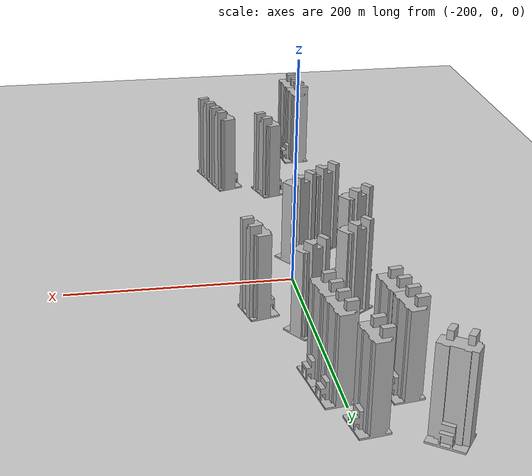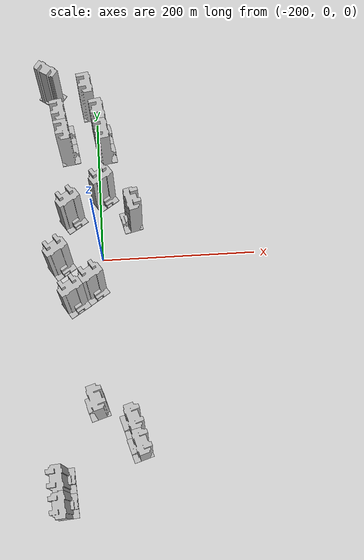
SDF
<sdf version="1.7">
 <world name="default">
  <model name="ground_plane">
   <static>1</static>
   <link name="link">
    <collision name="collision">
     <geometry><plane><normal>0 0 1</normal><size>1200 675</size></plane></geometry>
     <surface><friction><ode><mu>100</mu><mu2>50</mu2></ode></friction></surface>
    </collision>
    <visual name="visual">
     <cast_shadows>0</cast_shadows>
     <geometry><plane><normal>0 0 1</normal><size>1200 675</size></plane></geometry>
     <material>
      <script><uri>file://media/materials/scripts/gazebo.material</uri><name>Gazebo/Grey</name></script>
     </material>
    </visual>
   </link>
  </model>
  <model name="apartment_clone_0">
   <static>1</static>
   <link name="link_0">
    <inertial>
     <mass>1</mass>
     <inertia>
      <ixx>0.166667</ixx>
      <ixy>0</ixy>
      <ixz>0</ixz>
      <iyy>0.166667</iyy>
      <iyz>0</iyz>
      <izz>0.166667</izz>
     </inertia>
    </inertial>
    <pose>0.000226 2e-06 0 0 -0 0</pose>
    <visual name="visual">
     <geometry>
      <mesh>
       <uri>/home/leejeonghun/model_editor_models/apartment/scripts/apartment.dae</uri>
       <scale>0.4 0.4 0.5</scale>
      </mesh>
     </geometry>
     <material>
      <lighting>1</lighting>
      <script>
       <uri>/home/leejeonghun/model_editor_models/apartment/scripts/building.jpg</uri>
       <name>__default__</name>
      </script>
      <shader type="pixel"/>
     </material>
    </visual>
    <collision name="collision">
     <geometry>
      <mesh>
       <uri>/home/leejeonghun/model_editor_models/apartment/scripts/apartment.dae</uri>
       <scale>0.4 0.4 0.5</scale>
      </mesh>
     </geometry>
     <surface>
      <friction>
       <ode><mu>1</mu><mu2>1</mu2><fdir1>0 0 0</fdir1><slip1>0</slip1><slip2>0</slip2></ode>
       <torsional>
        <coefficient>1</coefficient>
        <patch_radius>0</patch_radius>
        <surface_radius>0</surface_radius>
        <use_patch_radius>1</use_patch_radius>
        <ode><slip>0</slip></ode>
       </torsional>
      </friction>
      <bounce><restitution_coefficient>0</restitution_coefficient><threshold>1e+06</threshold></bounce>
      <contact>
       <collide_without_contact>0</collide_without_contact>
       <collide_without_contact_bitmask>1</collide_without_contact_bitmask>
       <collide_bitmask>1</collide_bitmask>
       <ode>
        <soft_cfm>0</soft_cfm>
        <soft_erp>0.2</soft_erp>
        <kp>1e+13</kp>
        <kd>1</kd>
        <max_vel>0.01</max_vel>
        <min_depth>0</min_depth>
       </ode>
       <bullet>
        <split_impulse>1</split_impulse>
        <split_impulse_penetration_threshold>-0.01</split_impulse_penetration_threshold>
        <soft_cfm>0</soft_cfm>
        <soft_erp>0.2</soft_erp>
        <kp>1e+13</kp>
        <kd>1</kd>
       </bullet>
      </contact>
     </surface>
    </collision>
   </link>
   <static>0</static>
   <pose>-237.455 -58.0506 2.31406 0 -0 0.561981</pose>
  </model>
  <model name="apartment_clone_2">
   <static>1</static>
   <link name="link_0">
    <inertial>
     <mass>1</mass>
     <inertia>
      <ixx>0.166667</ixx>
      <ixy>0</ixy>
      <ixz>0</ixz>
      <iyy>0.166667</iyy>
      <iyz>0</iyz>
      <izz>0.166667</izz>
     </inertia>
    </inertial>
    <pose>0.000226 2e-06 0 0 -0 0</pose>
    <visual name="visual">
     <geometry>
      <mesh>
       <uri>/home/leejeonghun/model_editor_models/apartment/scripts/apartment.dae</uri>
       <scale>0.4 0.4 0.5</scale>
      </mesh>
     </geometry>
     <material>
      <lighting>1</lighting>
      <script>
       <uri>/home/leejeonghun/model_editor_models/apartment/scripts/building.jpg</uri>
       <name>__default__</name>
      </script>
      <shader type="pixel"/>
     </material>
    </visual>
    <collision name="collision">
     <geometry>
      <mesh>
       <uri>/home/leejeonghun/model_editor_models/apartment/scripts/apartment.dae</uri>
       <scale>0.4 0.4 0.5</scale>
      </mesh>
     </geometry>
     <surface>
      <friction>
       <ode><mu>1</mu><mu2>1</mu2><fdir1>0 0 0</fdir1><slip1>0</slip1><slip2>0</slip2></ode>
       <torsional>
        <coefficient>1</coefficient>
        <patch_radius>0</patch_radius>
        <surface_radius>0</surface_radius>
        <use_patch_radius>1</use_patch_radius>
        <ode><slip>0</slip></ode>
       </torsional>
      </friction>
      <bounce><restitution_coefficient>0</restitution_coefficient><threshold>1e+06</threshold></bounce>
      <contact>
       <collide_without_contact>0</collide_without_contact>
       <collide_without_contact_bitmask>1</collide_without_contact_bitmask>
       <collide_bitmask>1</collide_bitmask>
       <ode>
        <soft_cfm>0</soft_cfm>
        <soft_erp>0.2</soft_erp>
        <kp>1e+13</kp>
        <kd>1</kd>
        <max_vel>0.01</max_vel>
        <min_depth>0</min_depth>
       </ode>
       <bullet>
        <split_impulse>1</split_impulse>
        <split_impulse_penetration_threshold>-0.01</split_impulse_penetration_threshold>
        <soft_cfm>0</soft_cfm>
        <soft_erp>0.2</soft_erp>
        <kp>1e+13</kp>
        <kd>1</kd>
       </bullet>
      </contact>
     </surface>
    </collision>
   </link>
   <static>0</static>
   <pose>-212.841 -41.619 1.45895 0 -0 0.586882</pose>
  </model>
  <model name="apartment_clone_3">
   <static>1</static>
   <link name="link_0">
    <inertial>
     <mass>1</mass>
     <inertia>
      <ixx>0.166667</ixx>
      <ixy>0</ixy>
      <ixz>0</ixz>
      <iyy>0.166667</iyy>
      <iyz>0</iyz>
      <izz>0.166667</izz>
     </inertia>
    </inertial>
    <pose>0.000226 2e-06 0 0 -0 0</pose>
    <visual name="visual">
     <geometry>
      <mesh>
       <uri>/home/leejeonghun/model_editor_models/apartment/scripts/apartment.dae</uri>
       <scale>0.4 0.4 0.5</scale>
      </mesh>
     </geometry>
     <material>
      <lighting>1</lighting>
      <script>
       <uri>/home/leejeonghun/model_editor_models/apartment/scripts/building.jpg</uri>
       <name>__default__</name>
      </script>
      <shader type="pixel"/>
     </material>
    </visual>
    <collision name="collision">
     <geometry>
      <mesh>
       <uri>/home/leejeonghun/model_editor_models/apartment/scripts/apartment.dae</uri>
       <scale>0.4 0.4 0.5</scale>
      </mesh>
     </geometry>
     <surface>
      <friction>
       <ode><mu>1</mu><mu2>1</mu2><fdir1>0 0 0</fdir1><slip1>0</slip1><slip2>0</slip2></ode>
       <torsional>
        <coefficient>1</coefficient>
        <patch_radius>0</patch_radius>
        <surface_radius>0</surface_radius>
        <use_patch_radius>1</use_patch_radius>
        <ode><slip>0</slip></ode>
       </torsional>
      </friction>
      <bounce><restitution_coefficient>0</restitution_coefficient><threshold>1e+06</threshold></bounce>
      <contact>
       <collide_without_contact>0</collide_without_contact>
       <collide_without_contact_bitmask>1</collide_without_contact_bitmask>
       <collide_bitmask>1</collide_bitmask>
       <ode>
        <soft_cfm>0</soft_cfm>
        <soft_erp>0.2</soft_erp>
        <kp>1e+13</kp>
        <kd>1</kd>
        <max_vel>0.01</max_vel>
        <min_depth>0</min_depth>
       </ode>
       <bullet>
        <split_impulse>1</split_impulse>
        <split_impulse_penetration_threshold>-0.01</split_impulse_penetration_threshold>
        <soft_cfm>0</soft_cfm>
        <soft_erp>0.2</soft_erp>
        <kp>1e+13</kp>
        <kd>1</kd>
       </bullet>
      </contact>
     </surface>
    </collision>
   </link>
   <static>0</static>
   <pose>-195.289 87.5395 1.45895 0 -0 0.586882</pose>
  </model>
  <model name="apartment_clone_4">
   <static>1</static>
   <link name="link_0">
    <inertial>
     <mass>1</mass>
     <inertia>
      <ixx>0.166667</ixx>
      <ixy>0</ixy>
      <ixz>0</ixz>
      <iyy>0.166667</iyy>
      <iyz>0</iyz>
      <izz>0.166667</izz>
     </inertia>
    </inertial>
    <pose>0.000226 2e-06 0 0 -0 0</pose>
    <visual name="visual">
     <geometry>
      <mesh>
       <uri>/home/leejeonghun/model_editor_models/apartment/scripts/apartment.dae</uri>
       <scale>0.4 0.4 0.5</scale>
      </mesh>
     </geometry>
     <material>
      <lighting>1</lighting>
      <script>
       <uri>/home/leejeonghun/model_editor_models/apartment/scripts/building.jpg</uri>
       <name>__default__</name>
      </script>
      <shader type="pixel"/>
     </material>
    </visual>
    <collision name="collision">
     <geometry>
      <mesh>
       <uri>/home/leejeonghun/model_editor_models/apartment/scripts/apartment.dae</uri>
       <scale>0.4 0.4 0.5</scale>
      </mesh>
     </geometry>
     <surface>
      <friction>
       <ode><mu>1</mu><mu2>1</mu2><fdir1>0 0 0</fdir1><slip1>0</slip1><slip2>0</slip2></ode>
       <torsional>
        <coefficient>1</coefficient>
        <patch_radius>0</patch_radius>
        <surface_radius>0</surface_radius>
        <use_patch_radius>1</use_patch_radius>
        <ode><slip>0</slip></ode>
       </torsional>
      </friction>
      <bounce><restitution_coefficient>0</restitution_coefficient><threshold>1e+06</threshold></bounce>
      <contact>
       <collide_without_contact>0</collide_without_contact>
       <collide_without_contact_bitmask>1</collide_without_contact_bitmask>
       <collide_bitmask>1</collide_bitmask>
       <ode>
        <soft_cfm>0</soft_cfm>
        <soft_erp>0.2</soft_erp>
        <kp>1e+13</kp>
        <kd>1</kd>
        <max_vel>0.01</max_vel>
        <min_depth>0</min_depth>
       </ode>
       <bullet>
        <split_impulse>1</split_impulse>
        <split_impulse_penetration_threshold>-0.01</split_impulse_penetration_threshold>
        <soft_cfm>0</soft_cfm>
        <soft_erp>0.2</soft_erp>
        <kp>1e+13</kp>
        <kd>1</kd>
       </bullet>
      </contact>
     </surface>
    </collision>
   </link>
   <static>0</static>
   <pose>-237.879 58.8763 1.45895 0 -0 0.586882</pose>
  </model>
  <model name="apartment_clone_7">
   <static>1</static>
   <link name="link_0">
    <inertial>
     <mass>1</mass>
     <inertia>
      <ixx>0.166667</ixx>
      <ixy>0</ixy>
      <ixz>0</ixz>
      <iyy>0.166667</iyy>
      <iyz>0</iyz>
      <izz>0.166667</izz>
     </inertia>
    </inertial>
    <pose>0.000226 2e-06 0 0 -0 0</pose>
    <visual name="visual">
     <geometry>
      <mesh>
       <uri>/home/leejeonghun/model_editor_models/apartment/scripts/apartment.dae</uri>
       <scale>0.4 0.4 0.5</scale>
      </mesh>
     </geometry>
     <material>
      <lighting>1</lighting>
      <script>
       <uri>/home/leejeonghun/model_editor_models/apartment/scripts/building.jpg</uri>
       <name>__default__</name>
      </script>
      <shader type="pixel"/>
     </material>
    </visual>
    <collision name="collision">
     <geometry>
      <mesh>
       <uri>/home/leejeonghun/model_editor_models/apartment/scripts/apartment.dae</uri>
       <scale>0.4 0.4 0.5</scale>
      </mesh>
     </geometry>
     <surface>
      <friction>
       <ode><mu>1</mu><mu2>1</mu2><fdir1>0 0 0</fdir1><slip1>0</slip1><slip2>0</slip2></ode>
       <torsional>
        <coefficient>1</coefficient>
        <patch_radius>0</patch_radius>
        <surface_radius>0</surface_radius>
        <use_patch_radius>1</use_patch_radius>
        <ode><slip>0</slip></ode>
       </torsional>
      </friction>
      <bounce><restitution_coefficient>0</restitution_coefficient><threshold>1e+06</threshold></bounce>
      <contact>
       <collide_without_contact>0</collide_without_contact>
       <collide_without_contact_bitmask>1</collide_without_contact_bitmask>
       <collide_bitmask>1</collide_bitmask>
       <ode>
        <soft_cfm>0</soft_cfm>
        <soft_erp>0.2</soft_erp>
        <kp>1e+13</kp>
        <kd>1</kd>
        <max_vel>0.01</max_vel>
        <min_depth>0</min_depth>
       </ode>
       <bullet>
        <split_impulse>1</split_impulse>
        <split_impulse_penetration_threshold>-0.01</split_impulse_penetration_threshold>
        <soft_cfm>0</soft_cfm>
        <soft_erp>0.2</soft_erp>
        <kp>1e+13</kp>
        <kd>1</kd>
       </bullet>
      </contact>
     </surface>
    </collision>
   </link>
   <static>0</static>
   <pose>-254.849 -5.7921 1.45895 0 -0 0.586882</pose>
  </model>
  <model name="apartment_clone_8_clone_3_clone">
   <static>1</static>
   <link name="link_0">
    <inertial>
     <mass>1</mass>
     <inertia>
      <ixx>0.166667</ixx>
      <ixy>0</ixy>
      <ixz>0</ixz>
      <iyy>0.166667</iyy>
      <iyz>0</iyz>
      <izz>0.166667</izz>
     </inertia>
    </inertial>
    <pose>0.000226 2e-06 0 0 -0 0</pose>
    <visual name="visual">
     <geometry>
      <mesh>
       <uri>/home/leejeonghun/model_editor_models/apartment/scripts/apartment.dae</uri>
       <scale>0.4 0.4 0.5</scale>
      </mesh>
     </geometry>
     <material>
      <lighting>1</lighting>
      <script>
       <uri>/home/leejeonghun/model_editor_models/apartment/scripts/building.jpg</uri>
       <name>__default__</name>
      </script>
      <shader type="pixel"/>
     </material>
    </visual>
    <collision name="collision">
     <geometry>
      <mesh>
       <uri>/home/leejeonghun/model_editor_models/apartment/scripts/apartment.dae</uri>
       <scale>0.4 0.4 0.5</scale>
      </mesh>
     </geometry>
     <surface>
      <friction>
       <ode><mu>1</mu><mu2>1</mu2><fdir1>0 0 0</fdir1><slip1>0</slip1><slip2>0</slip2></ode>
       <torsional>
        <coefficient>1</coefficient>
        <patch_radius>0</patch_radius>
        <surface_radius>0</surface_radius>
        <use_patch_radius>1</use_patch_radius>
        <ode><slip>0</slip></ode>
       </torsional>
      </friction>
      <bounce><restitution_coefficient>0</restitution_coefficient><threshold>1e+06</threshold></bounce>
      <contact>
       <collide_without_contact>0</collide_without_contact>
       <collide_without_contact_bitmask>1</collide_without_contact_bitmask>
       <collide_bitmask>1</collide_bitmask>
       <ode>
        <soft_cfm>0</soft_cfm>
        <soft_erp>0.2</soft_erp>
        <kp>1e+13</kp>
        <kd>1</kd>
        <max_vel>0.01</max_vel>
        <min_depth>0</min_depth>
       </ode>
       <bullet>
        <split_impulse>1</split_impulse>
        <split_impulse_penetration_threshold>-0.01</split_impulse_penetration_threshold>
        <soft_cfm>0</soft_cfm>
        <soft_erp>0.2</soft_erp>
        <kp>1e+13</kp>
        <kd>1</kd>
       </bullet>
      </contact>
     </surface>
    </collision>
   </link>
   <static>0</static>
   <pose>-261.931 246.709 1.45895 0 -0 2.51739</pose>
  </model>
  <model name="apartment_clone_8_clone_3_clone_0">
   <static>1</static>
   <link name="link_0">
    <inertial>
     <mass>1</mass>
     <inertia>
      <ixx>0.166667</ixx>
      <ixy>0</ixy>
      <ixz>0</ixz>
      <iyy>0.166667</iyy>
      <iyz>0</iyz>
      <izz>0.166667</izz>
     </inertia>
    </inertial>
    <pose>0.000226 2e-06 0 0 -0 0</pose>
    <visual name="visual">
     <geometry>
      <mesh>
       <uri>/home/leejeonghun/model_editor_models/apartment/scripts/apartment.dae</uri>
       <scale>0.4 0.4 0.5</scale>
      </mesh>
     </geometry>
     <material>
      <lighting>1</lighting>
      <script>
       <uri>/home/leejeonghun/model_editor_models/apartment/scripts/building.jpg</uri>
       <name>__default__</name>
      </script>
      <shader type="pixel"/>
     </material>
    </visual>
    <collision name="collision">
     <geometry>
      <mesh>
       <uri>/home/leejeonghun/model_editor_models/apartment/scripts/apartment.dae</uri>
       <scale>0.4 0.4 0.5</scale>
      </mesh>
     </geometry>
     <surface>
      <friction>
       <ode><mu>1</mu><mu2>1</mu2><fdir1>0 0 0</fdir1><slip1>0</slip1><slip2>0</slip2></ode>
       <torsional>
        <coefficient>1</coefficient>
        <patch_radius>0</patch_radius>
        <surface_radius>0</surface_radius>
        <use_patch_radius>1</use_patch_radius>
        <ode><slip>0</slip></ode>
       </torsional>
      </friction>
      <bounce><restitution_coefficient>0</restitution_coefficient><threshold>1e+06</threshold></bounce>
      <contact>
       <collide_without_contact>0</collide_without_contact>
       <collide_without_contact_bitmask>1</collide_without_contact_bitmask>
       <collide_bitmask>1</collide_bitmask>
       <ode>
        <soft_cfm>0</soft_cfm>
        <soft_erp>0.2</soft_erp>
        <kp>1e+13</kp>
        <kd>1</kd>
        <max_vel>0.01</max_vel>
        <min_depth>0</min_depth>
       </ode>
       <bullet>
        <split_impulse>1</split_impulse>
        <split_impulse_penetration_threshold>-0.01</split_impulse_penetration_threshold>
        <soft_cfm>0</soft_cfm>
        <soft_erp>0.2</soft_erp>
        <kp>1e+13</kp>
        <kd>1</kd>
       </bullet>
      </contact>
     </surface>
    </collision>
   </link>
   <static>0</static>
   <pose>-245.732 185.285 1.45895 0 -0 1.72652</pose>
  </model>
  <model name="apartment_clone_8_clone_3_clone_0_clone">
   <static>1</static>
   <link name="link_0">
    <inertial>
     <mass>1</mass>
     <inertia>
      <ixx>0.166667</ixx>
      <ixy>0</ixy>
      <ixz>0</ixz>
      <iyy>0.166667</iyy>
      <iyz>0</iyz>
      <izz>0.166667</izz>
     </inertia>
    </inertial>
    <pose>0.000226 2e-06 0 0 -0 0</pose>
    <visual name="visual">
     <geometry>
      <mesh>
       <uri>/home/leejeonghun/model_editor_models/apartment/scripts/apartment.dae</uri>
       <scale>0.4 0.4 0.5</scale>
      </mesh>
     </geometry>
     <material>
      <lighting>1</lighting>
      <script>
       <uri>/home/leejeonghun/model_editor_models/apartment/scripts/building.jpg</uri>
       <name>__default__</name>
      </script>
      <shader type="pixel"/>
     </material>
    </visual>
    <collision name="collision">
     <geometry>
      <mesh>
       <uri>/home/leejeonghun/model_editor_models/apartment/scripts/apartment.dae</uri>
       <scale>0.4 0.4 0.5</scale>
      </mesh>
     </geometry>
     <surface>
      <friction>
       <ode><mu>1</mu><mu2>1</mu2><fdir1>0 0 0</fdir1><slip1>0</slip1><slip2>0</slip2></ode>
       <torsional>
        <coefficient>1</coefficient>
        <patch_radius>0</patch_radius>
        <surface_radius>0</surface_radius>
        <use_patch_radius>1</use_patch_radius>
        <ode><slip>0</slip></ode>
       </torsional>
      </friction>
      <bounce><restitution_coefficient>0</restitution_coefficient><threshold>1e+06</threshold></bounce>
      <contact>
       <collide_without_contact>0</collide_without_contact>
       <collide_without_contact_bitmask>1</collide_without_contact_bitmask>
       <collide_bitmask>1</collide_bitmask>
       <ode>
        <soft_cfm>0</soft_cfm>
        <soft_erp>0.2</soft_erp>
        <kp>1e+13</kp>
        <kd>1</kd>
        <max_vel>0.01</max_vel>
        <min_depth>0</min_depth>
       </ode>
       <bullet>
        <split_impulse>1</split_impulse>
        <split_impulse_penetration_threshold>-0.01</split_impulse_penetration_threshold>
        <soft_cfm>0</soft_cfm>
        <soft_erp>0.2</soft_erp>
        <kp>1e+13</kp>
        <kd>1</kd>
       </bullet>
      </contact>
     </surface>
    </collision>
   </link>
   <static>0</static>
   <pose>-240.976 156.074 1.45895 0 -0 1.72652</pose>
  </model>
  <model name="apartment_clone_8_clone_3_clone_0_clone_0">
   <static>1</static>
   <link name="link_0">
    <inertial>
     <mass>1</mass>
     <inertia>
      <ixx>0.166667</ixx>
      <ixy>0</ixy>
      <ixz>0</ixz>
      <iyy>0.166667</iyy>
      <iyz>0</iyz>
      <izz>0.166667</izz>
     </inertia>
    </inertial>
    <pose>0.000226 2e-06 0 0 -0 0</pose>
    <visual name="visual">
     <geometry>
      <mesh>
       <uri>/home/leejeonghun/model_editor_models/apartment/scripts/apartment.dae</uri>
       <scale>0.4 0.4 0.5</scale>
      </mesh>
     </geometry>
     <material>
      <lighting>1</lighting>
      <script>
       <uri>/home/leejeonghun/model_editor_models/apartment/scripts/building.jpg</uri>
       <name>__default__</name>
      </script>
      <shader type="pixel"/>
     </material>
    </visual>
    <collision name="collision">
     <geometry>
      <mesh>
       <uri>/home/leejeonghun/model_editor_models/apartment/scripts/apartment.dae</uri>
       <scale>0.4 0.4 0.5</scale>
      </mesh>
     </geometry>
     <surface>
      <friction>
       <ode><mu>1</mu><mu2>1</mu2><fdir1>0 0 0</fdir1><slip1>0</slip1><slip2>0</slip2></ode>
       <torsional>
        <coefficient>1</coefficient>
        <patch_radius>0</patch_radius>
        <surface_radius>0</surface_radius>
        <use_patch_radius>1</use_patch_radius>
        <ode><slip>0</slip></ode>
       </torsional>
      </friction>
      <bounce><restitution_coefficient>0</restitution_coefficient><threshold>1e+06</threshold></bounce>
      <contact>
       <collide_without_contact>0</collide_without_contact>
       <collide_without_contact_bitmask>1</collide_without_contact_bitmask>
       <collide_bitmask>1</collide_bitmask>
       <ode>
        <soft_cfm>0</soft_cfm>
        <soft_erp>0.2</soft_erp>
        <kp>1e+13</kp>
        <kd>1</kd>
        <max_vel>0.01</max_vel>
        <min_depth>0</min_depth>
       </ode>
       <bullet>
        <split_impulse>1</split_impulse>
        <split_impulse_penetration_threshold>-0.01</split_impulse_penetration_threshold>
        <soft_cfm>0</soft_cfm>
        <soft_erp>0.2</soft_erp>
        <kp>1e+13</kp>
        <kd>1</kd>
       </bullet>
      </contact>
     </surface>
    </collision>
   </link>
   <static>0</static>
   <pose>-190.441 154.89 1.45895 0 -0 1.72652</pose>
  </model>
  <model name="apartment_clone_8_clone_3_clone_0_clone_1">
   <static>1</static>
   <link name="link_0">
    <inertial>
     <mass>1</mass>
     <inertia>
      <ixx>0.166667</ixx>
      <ixy>0</ixy>
      <ixz>0</ixz>
      <iyy>0.166667</iyy>
      <iyz>0</iyz>
      <izz>0.166667</izz>
     </inertia>
    </inertial>
    <pose>0.000226 2e-06 0 0 -0 0</pose>
    <visual name="visual">
     <geometry>
      <mesh>
       <uri>/home/leejeonghun/model_editor_models/apartment/scripts/apartment.dae</uri>
       <scale>0.4 0.4 0.5</scale>
      </mesh>
     </geometry>
     <material>
      <lighting>1</lighting>
      <script>
       <uri>/home/leejeonghun/model_editor_models/apartment/scripts/building.jpg</uri>
       <name>__default__</name>
      </script>
      <shader type="pixel"/>
     </material>
    </visual>
    <collision name="collision">
     <geometry>
      <mesh>
       <uri>/home/leejeonghun/model_editor_models/apartment/scripts/apartment.dae</uri>
       <scale>0.4 0.4 0.5</scale>
      </mesh>
     </geometry>
     <surface>
      <friction>
       <ode><mu>1</mu><mu2>1</mu2><fdir1>0 0 0</fdir1><slip1>0</slip1><slip2>0</slip2></ode>
       <torsional>
        <coefficient>1</coefficient>
        <patch_radius>0</patch_radius>
        <surface_radius>0</surface_radius>
        <use_patch_radius>1</use_patch_radius>
        <ode><slip>0</slip></ode>
       </torsional>
      </friction>
      <bounce><restitution_coefficient>0</restitution_coefficient><threshold>1e+06</threshold></bounce>
      <contact>
       <collide_without_contact>0</collide_without_contact>
       <collide_without_contact_bitmask>1</collide_without_contact_bitmask>
       <collide_bitmask>1</collide_bitmask>
       <ode>
        <soft_cfm>0</soft_cfm>
        <soft_erp>0.2</soft_erp>
        <kp>1e+13</kp>
        <kd>1</kd>
        <max_vel>0.01</max_vel>
        <min_depth>0</min_depth>
       </ode>
       <bullet>
        <split_impulse>1</split_impulse>
        <split_impulse_penetration_threshold>-0.01</split_impulse_penetration_threshold>
        <soft_cfm>0</soft_cfm>
        <soft_erp>0.2</soft_erp>
        <kp>1e+13</kp>
        <kd>1</kd>
       </bullet>
      </contact>
     </surface>
    </collision>
   </link>
   <static>0</static>
   <pose>-194.757 183.695 1.45895 0 -0 1.72652</pose>
  </model>
  <model name="apartment_clone_8_clone_3_clone_0_clone_2">
   <static>1</static>
   <link name="link_0">
    <inertial>
     <mass>1</mass>
     <inertia>
      <ixx>0.166667</ixx>
      <ixy>0</ixy>
      <ixz>0</ixz>
      <iyy>0.166667</iyy>
      <iyz>0</iyz>
      <izz>0.166667</izz>
     </inertia>
    </inertial>
    <pose>0.000226 2e-06 0 0 -0 0</pose>
    <visual name="visual">
     <geometry>
      <mesh>
       <uri>/home/leejeonghun/model_editor_models/apartment/scripts/apartment.dae</uri>
       <scale>0.4 0.4 0.5</scale>
      </mesh>
     </geometry>
     <material>
      <lighting>1</lighting>
      <script>
       <uri>/home/leejeonghun/model_editor_models/apartment/scripts/building.jpg</uri>
       <name>__default__</name>
      </script>
      <shader type="pixel"/>
     </material>
    </visual>
    <collision name="collision">
     <geometry>
      <mesh>
       <uri>/home/leejeonghun/model_editor_models/apartment/scripts/apartment.dae</uri>
       <scale>0.4 0.4 0.5</scale>
      </mesh>
     </geometry>
     <surface>
      <friction>
       <ode><mu>1</mu><mu2>1</mu2><fdir1>0 0 0</fdir1><slip1>0</slip1><slip2>0</slip2></ode>
       <torsional>
        <coefficient>1</coefficient>
        <patch_radius>0</patch_radius>
        <surface_radius>0</surface_radius>
        <use_patch_radius>1</use_patch_radius>
        <ode><slip>0</slip></ode>
       </torsional>
      </friction>
      <bounce><restitution_coefficient>0</restitution_coefficient><threshold>1e+06</threshold></bounce>
      <contact>
       <collide_without_contact>0</collide_without_contact>
       <collide_without_contact_bitmask>1</collide_without_contact_bitmask>
       <collide_bitmask>1</collide_bitmask>
       <ode>
        <soft_cfm>0</soft_cfm>
        <soft_erp>0.2</soft_erp>
        <kp>1e+13</kp>
        <kd>1</kd>
        <max_vel>0.01</max_vel>
        <min_depth>0</min_depth>
       </ode>
       <bullet>
        <split_impulse>1</split_impulse>
        <split_impulse_penetration_threshold>-0.01</split_impulse_penetration_threshold>
        <soft_cfm>0</soft_cfm>
        <soft_erp>0.2</soft_erp>
        <kp>1e+13</kp>
        <kd>1</kd>
       </bullet>
      </contact>
     </surface>
    </collision>
   </link>
   <static>0</static>
   <pose>-209.656 223.308 1.45895 0 -0 1.72652</pose>
  </model>
  <model name="apartment_clone_1_clone">
   <static>1</static>
   <link name="link_0">
    <inertial>
     <mass>1</mass>
     <inertia>
      <ixx>0.166667</ixx>
      <ixy>0</ixy>
      <ixz>0</ixz>
      <iyy>0.166667</iyy>
      <iyz>0</iyz>
      <izz>0.166667</izz>
     </inertia>
    </inertial>
    <pose>0.000226 2e-06 0 0 -0 0</pose>
    <visual name="visual">
     <geometry>
      <mesh>
       <uri>/home/leejeonghun/model_editor_models/apartment/scripts/apartment.dae</uri>
       <scale>0.4 0.4 0.5</scale>
      </mesh>
     </geometry>
     <material>
      <lighting>1</lighting>
      <script>
       <uri>/home/leejeonghun/model_editor_models/apartment/scripts/building.jpg</uri>
       <name>__default__</name>
      </script>
      <shader type="pixel"/>
     </material>
    </visual>
    <collision name="collision">
     <geometry>
      <mesh>
       <uri>/home/leejeonghun/model_editor_models/apartment/scripts/apartment.dae</uri>
       <scale>0.4 0.4 0.5</scale>
      </mesh>
     </geometry>
     <surface>
      <friction>
       <ode><mu>1</mu><mu2>1</mu2><fdir1>0 0 0</fdir1><slip1>0</slip1><slip2>0</slip2></ode>
       <torsional>
        <coefficient>1</coefficient>
        <patch_radius>0</patch_radius>
        <surface_radius>0</surface_radius>
        <use_patch_radius>1</use_patch_radius>
        <ode><slip>0</slip></ode>
       </torsional>
      </friction>
      <bounce><restitution_coefficient>0</restitution_coefficient><threshold>1e+06</threshold></bounce>
      <contact>
       <collide_without_contact>0</collide_without_contact>
       <collide_without_contact_bitmask>1</collide_without_contact_bitmask>
       <collide_bitmask>1</collide_bitmask>
       <ode>
        <soft_cfm>0</soft_cfm>
        <soft_erp>0.2</soft_erp>
        <kp>1e+13</kp>
        <kd>1</kd>
        <max_vel>0.01</max_vel>
        <min_depth>0</min_depth>
       </ode>
       <bullet>
        <split_impulse>1</split_impulse>
        <split_impulse_penetration_threshold>-0.01</split_impulse_penetration_threshold>
        <soft_cfm>0</soft_cfm>
        <soft_erp>0.2</soft_erp>
        <kp>1e+13</kp>
        <kd>1</kd>
       </bullet>
      </contact>
     </surface>
    </collision>
   </link>
   <static>0</static>
   <pose>-158.717 52.6798 2.31406 0 0 -1.33202</pose>
  </model>
  <model name="apartment_0_clone_0_clone_1">
   <static>1</static>
   <link name="link_0">
    <inertial>
     <mass>1</mass>
     <inertia>
      <ixx>0.166667</ixx>
      <ixy>0</ixy>
      <ixz>0</ixz>
      <iyy>0.166667</iyy>
      <iyz>0</iyz>
      <izz>0.166667</izz>
     </inertia>
    </inertial>
    <pose>0.000226 2e-06 0 0 -0 0</pose>
    <visual name="visual">
     <geometry>
      <mesh>
       <uri>/home/leejeonghun/model_editor_models/apartment/scripts/apartment.dae</uri>
       <scale>0.4 0.4 0.5</scale>
      </mesh>
     </geometry>
     <material>
      <lighting>1</lighting>
      <script>
       <uri>/home/leejeonghun/model_editor_models/apartment/scripts/building.jpg</uri>
       <name>__default__</name>
      </script>
      <shader type="pixel"/>
     </material>
    </visual>
    <collision name="collision">
     <geometry>
      <mesh>
       <uri>/home/leejeonghun/model_editor_models/apartment/scripts/apartment.dae</uri>
       <scale>0.4 0.4 0.5</scale>
      </mesh>
     </geometry>
     <surface>
      <friction>
       <ode><mu>1</mu><mu2>1</mu2><fdir1>0 0 0</fdir1><slip1>0</slip1><slip2>0</slip2></ode>
       <torsional>
        <coefficient>1</coefficient>
        <patch_radius>0</patch_radius>
        <surface_radius>0</surface_radius>
        <use_patch_radius>1</use_patch_radius>
        <ode><slip>0</slip></ode>
       </torsional>
      </friction>
      <bounce><restitution_coefficient>0</restitution_coefficient><threshold>1e+06</threshold></bounce>
      <contact>
       <collide_without_contact>0</collide_without_contact>
       <collide_without_contact_bitmask>1</collide_without_contact_bitmask>
       <collide_bitmask>1</collide_bitmask>
       <ode>
        <soft_cfm>0</soft_cfm>
        <soft_erp>0.2</soft_erp>
        <kp>1e+13</kp>
        <kd>1</kd>
        <max_vel>0.01</max_vel>
        <min_depth>0</min_depth>
       </ode>
       <bullet>
        <split_impulse>1</split_impulse>
        <split_impulse_penetration_threshold>-0.01</split_impulse_penetration_threshold>
        <soft_cfm>0</soft_cfm>
        <soft_erp>0.2</soft_erp>
        <kp>1e+13</kp>
        <kd>1</kd>
       </bullet>
      </contact>
     </surface>
    </collision>
   </link>
   <static>0</static>
   <pose>-170.376 -216.404 1.76839 0 0 -1.27445</pose>
  </model>
  <model name="apartment_0_clone_0_clone_1_clone">
   <static>1</static>
   <link name="link_0">
    <inertial>
     <mass>1</mass>
     <inertia>
      <ixx>0.166667</ixx>
      <ixy>0</ixy>
      <ixz>0</ixz>
      <iyy>0.166667</iyy>
      <iyz>0</iyz>
      <izz>0.166667</izz>
     </inertia>
    </inertial>
    <pose>0.000226 2e-06 0 0 -0 0</pose>
    <visual name="visual">
     <geometry>
      <mesh>
       <uri>/home/leejeonghun/model_editor_models/apartment/scripts/apartment.dae</uri>
       <scale>0.4 0.4 0.5</scale>
      </mesh>
     </geometry>
     <material>
      <lighting>1</lighting>
      <script>
       <uri>/home/leejeonghun/model_editor_models/apartment/scripts/building.jpg</uri>
       <name>__default__</name>
      </script>
      <shader type="pixel"/>
     </material>
    </visual>
    <collision name="collision">
     <geometry>
      <mesh>
       <uri>/home/leejeonghun/model_editor_models/apartment/scripts/apartment.dae</uri>
       <scale>0.4 0.4 0.5</scale>
      </mesh>
     </geometry>
     <surface>
      <friction>
       <ode><mu>1</mu><mu2>1</mu2><fdir1>0 0 0</fdir1><slip1>0</slip1><slip2>0</slip2></ode>
       <torsional>
        <coefficient>1</coefficient>
        <patch_radius>0</patch_radius>
        <surface_radius>0</surface_radius>
        <use_patch_radius>1</use_patch_radius>
        <ode><slip>0</slip></ode>
       </torsional>
      </friction>
      <bounce><restitution_coefficient>0</restitution_coefficient><threshold>1e+06</threshold></bounce>
      <contact>
       <collide_without_contact>0</collide_without_contact>
       <collide_without_contact_bitmask>1</collide_without_contact_bitmask>
       <collide_bitmask>1</collide_bitmask>
       <ode>
        <soft_cfm>0</soft_cfm>
        <soft_erp>0.2</soft_erp>
        <kp>1e+13</kp>
        <kd>1</kd>
        <max_vel>0.01</max_vel>
        <min_depth>0</min_depth>
       </ode>
       <bullet>
        <split_impulse>1</split_impulse>
        <split_impulse_penetration_threshold>-0.01</split_impulse_penetration_threshold>
        <soft_cfm>0</soft_cfm>
        <soft_erp>0.2</soft_erp>
        <kp>1e+13</kp>
        <kd>1</kd>
       </bullet>
      </contact>
     </surface>
    </collision>
   </link>
   <static>0</static>
   <pose>-162.567 -244.997 1.76839 0 0 -1.27445</pose>
  </model>
  <model name="apartment_0_clone_0_clone_1_clone_0">
   <static>1</static>
   <link name="link_0">
    <inertial>
     <mass>1</mass>
     <inertia>
      <ixx>0.166667</ixx>
      <ixy>0</ixy>
      <ixz>0</ixz>
      <iyy>0.166667</iyy>
      <iyz>0</iyz>
      <izz>0.166667</izz>
     </inertia>
    </inertial>
    <pose>0.000226 2e-06 0 0 -0 0</pose>
    <visual name="visual">
     <geometry>
      <mesh>
       <uri>/home/leejeonghun/model_editor_models/apartment/scripts/apartment.dae</uri>
       <scale>0.4 0.4 0.5</scale>
      </mesh>
     </geometry>
     <material>
      <lighting>1</lighting>
      <script>
       <uri>/home/leejeonghun/model_editor_models/apartment/scripts/building.jpg</uri>
       <name>__default__</name>
      </script>
      <shader type="pixel"/>
     </material>
    </visual>
    <collision name="collision">
     <geometry>
      <mesh>
       <uri>/home/leejeonghun/model_editor_models/apartment/scripts/apartment.dae</uri>
       <scale>0.4 0.4 0.5</scale>
      </mesh>
     </geometry>
     <surface>
      <friction>
       <ode><mu>1</mu><mu2>1</mu2><fdir1>0 0 0</fdir1><slip1>0</slip1><slip2>0</slip2></ode>
       <torsional>
        <coefficient>1</coefficient>
        <patch_radius>0</patch_radius>
        <surface_radius>0</surface_radius>
        <use_patch_radius>1</use_patch_radius>
        <ode><slip>0</slip></ode>
       </torsional>
      </friction>
      <bounce><restitution_coefficient>0</restitution_coefficient><threshold>1e+06</threshold></bounce>
      <contact>
       <collide_without_contact>0</collide_without_contact>
       <collide_without_contact_bitmask>1</collide_without_contact_bitmask>
       <collide_bitmask>1</collide_bitmask>
       <ode>
        <soft_cfm>0</soft_cfm>
        <soft_erp>0.2</soft_erp>
        <kp>1e+13</kp>
        <kd>1</kd>
        <max_vel>0.01</max_vel>
        <min_depth>0</min_depth>
       </ode>
       <bullet>
        <split_impulse>1</split_impulse>
        <split_impulse_penetration_threshold>-0.01</split_impulse_penetration_threshold>
        <soft_cfm>0</soft_cfm>
        <soft_erp>0.2</soft_erp>
        <kp>1e+13</kp>
        <kd>1</kd>
       </bullet>
      </contact>
     </surface>
    </collision>
   </link>
   <static>0</static>
   <pose>-212.609 -192.467 1.76839 0 0 -1.27445</pose>
  </model>
  <model name="apartment_0_clone_0_clone_1_clone_2_clone_2">
   <static>1</static>
   <link name="link_0">
    <inertial>
     <mass>1</mass>
     <inertia>
      <ixx>0.166667</ixx>
      <ixy>0</ixy>
      <ixz>0</ixz>
      <iyy>0.166667</iyy>
      <iyz>0</iyz>
      <izz>0.166667</izz>
     </inertia>
    </inertial>
    <pose>0.000226 2e-06 0 0 -0 0</pose>
    <visual name="visual">
     <geometry>
      <mesh>
       <uri>/home/leejeonghun/model_editor_models/apartment/scripts/apartment.dae</uri>
       <scale>0.4 0.4 0.5</scale>
      </mesh>
     </geometry>
     <material>
      <lighting>1</lighting>
      <script>
       <uri>/home/leejeonghun/model_editor_models/apartment/scripts/building.jpg</uri>
       <name>__default__</name>
      </script>
      <shader type="pixel"/>
     </material>
    </visual>
    <collision name="collision">
     <geometry>
      <mesh>
       <uri>/home/leejeonghun/model_editor_models/apartment/scripts/apartment.dae</uri>
       <scale>0.4 0.4 0.5</scale>
      </mesh>
     </geometry>
     <surface>
      <friction>
       <ode><mu>1</mu><mu2>1</mu2><fdir1>0 0 0</fdir1><slip1>0</slip1><slip2>0</slip2></ode>
       <torsional>
        <coefficient>1</coefficient>
        <patch_radius>0</patch_radius>
        <surface_radius>0</surface_radius>
        <use_patch_radius>1</use_patch_radius>
        <ode><slip>0</slip></ode>
       </torsional>
      </friction>
      <bounce><restitution_coefficient>0</restitution_coefficient><threshold>1e+06</threshold></bounce>
      <contact>
       <collide_without_contact>0</collide_without_contact>
       <collide_without_contact_bitmask>1</collide_without_contact_bitmask>
       <collide_bitmask>1</collide_bitmask>
       <ode>
        <soft_cfm>0</soft_cfm>
        <soft_erp>0.2</soft_erp>
        <kp>1e+13</kp>
        <kd>1</kd>
        <max_vel>0.01</max_vel>
        <min_depth>0</min_depth>
       </ode>
       <bullet>
        <split_impulse>1</split_impulse>
        <split_impulse_penetration_threshold>-0.01</split_impulse_penetration_threshold>
        <soft_cfm>0</soft_cfm>
        <soft_erp>0.2</soft_erp>
        <kp>1e+13</kp>
        <kd>1</kd>
       </bullet>
      </contact>
     </surface>
    </collision>
   </link>
   <static>0</static>
   <pose>-255.381 -308.174 1.76839 0 -0 1.65207</pose>
  </model>
  <model name="apartment_0_clone_0_clone_1_clone_2_clone_2_clone_clone">
   <static>1</static>
   <link name="link_0">
    <inertial>
     <mass>1</mass>
     <inertia>
      <ixx>0.166667</ixx>
      <ixy>0</ixy>
      <ixz>0</ixz>
      <iyy>0.166667</iyy>
      <iyz>0</iyz>
      <izz>0.166667</izz>
     </inertia>
    </inertial>
    <pose>0.000226 2e-06 0 0 -0 0</pose>
    <visual name="visual">
     <geometry>
      <mesh>
       <uri>/home/leejeonghun/model_editor_models/apartment/scripts/apartment.dae</uri>
       <scale>0.4 0.4 0.5</scale>
      </mesh>
     </geometry>
     <material>
      <lighting>1</lighting>
      <script>
       <uri>/home/leejeonghun/model_editor_models/apartment/scripts/building.jpg</uri>
       <name>__default__</name>
      </script>
      <shader type="pixel"/>
     </material>
    </visual>
    <collision name="collision">
     <geometry>
      <mesh>
       <uri>/home/leejeonghun/model_editor_models/apartment/scripts/apartment.dae</uri>
       <scale>0.4 0.4 0.5</scale>
      </mesh>
     </geometry>
     <surface>
      <friction>
       <ode><mu>1</mu><mu2>1</mu2><fdir1>0 0 0</fdir1><slip1>0</slip1><slip2>0</slip2></ode>
       <torsional>
        <coefficient>1</coefficient>
        <patch_radius>0</patch_radius>
        <surface_radius>0</surface_radius>
        <use_patch_radius>1</use_patch_radius>
        <ode><slip>0</slip></ode>
       </torsional>
      </friction>
      <bounce><restitution_coefficient>0</restitution_coefficient><threshold>1e+06</threshold></bounce>
      <contact>
       <collide_without_contact>0</collide_without_contact>
       <collide_without_contact_bitmask>1</collide_without_contact_bitmask>
       <collide_bitmask>1</collide_bitmask>
       <ode>
        <soft_cfm>0</soft_cfm>
        <soft_erp>0.2</soft_erp>
        <kp>1e+13</kp>
        <kd>1</kd>
        <max_vel>0.01</max_vel>
        <min_depth>0</min_depth>
       </ode>
       <bullet>
        <split_impulse>1</split_impulse>
        <split_impulse_penetration_threshold>-0.01</split_impulse_penetration_threshold>
        <soft_cfm>0</soft_cfm>
        <soft_erp>0.2</soft_erp>
        <kp>1e+13</kp>
        <kd>1</kd>
       </bullet>
      </contact>
     </surface>
    </collision>
   </link>
   <static>0</static>
   <pose>-257.809 -279.509 1.76839 0 -0 1.65207</pose>
  </model>
 </world>
</sdf>
